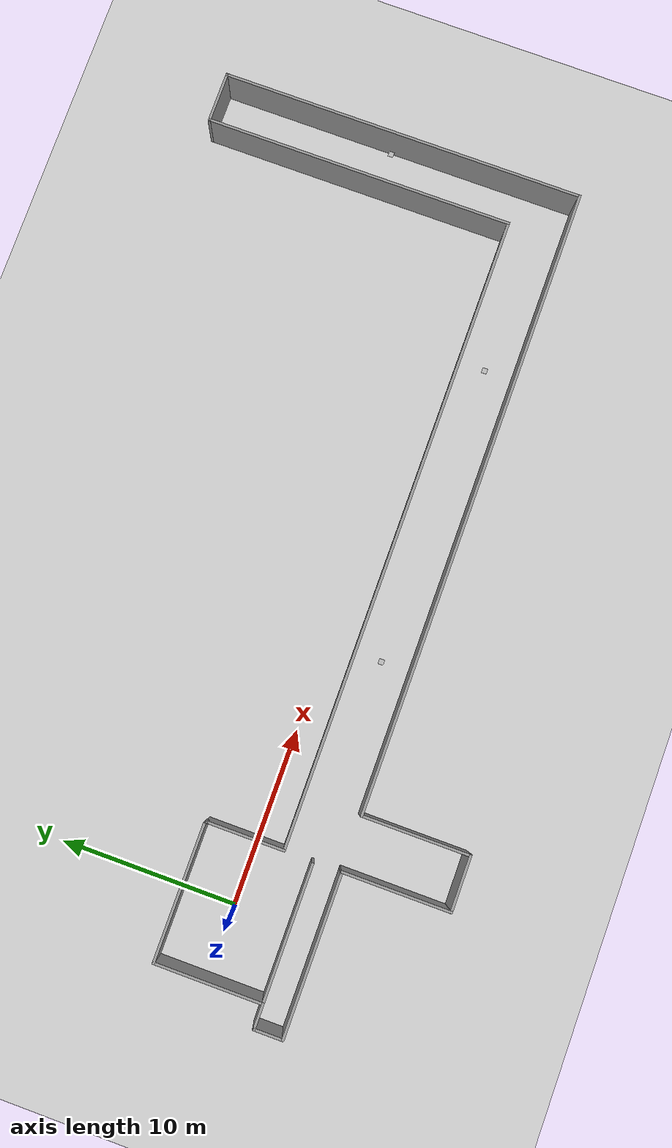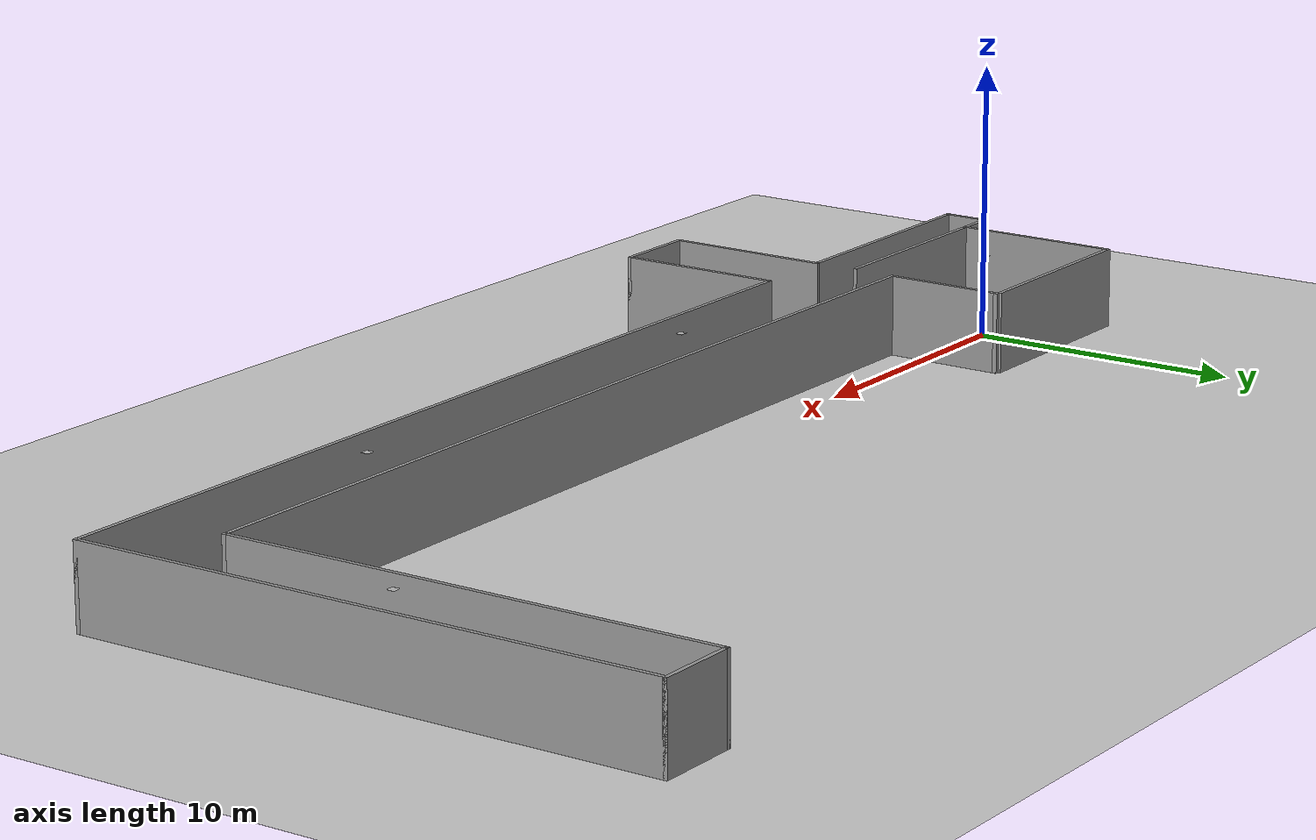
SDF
<?xml version='1.0'?>
<sdf version='1.6'>
 <world name="default">
	<include>
      <uri>model://ground_plane</uri>
    </include>
	<include>
      <uri>model://sun</uri>
    </include>
  <model name='dipartimento'>
    <pose frame=''>19.064873 2.743365 0 0 -0 1.5708</pose>
    <link name='Wall_0'>
      <collision name='Wall_0_Collision'>
        <geometry>
          <box>
            <size>1.75 0.15 3.25</size>
          </box>
        </geometry>
        <pose frame=''>0 0 1.25 0 -0 0</pose>
      </collision>
      <visual name='Wall_0_Visual'>
        <pose frame=''>0 0 1.25 0 -0 0</pose>
        <geometry>
          <box>
            <size>1.75 0.15 3.25</size>
          </box>
        </geometry>
        <material>
          <script>
            <uri>file://media/materials/scripts/gazebo.material</uri>
            <name>Gazebo/Grey</name>
          </script>
          <ambient>1 1 1 1</ambient>
        </material>
        <meta>
          <layer>0</layer>
        </meta>
      </visual>
      <pose frame=''>-6.7 24.275 0 0 -0 0</pose>
    </link>
    <link name='Wall_1'>
      <collision name='Wall_1_Collision'>
        <geometry>
          <box>
            <size>1.5 0.15 3.25</size>
          </box>
        </geometry>
        <pose frame=''>0 0 1.25 0 -0 0</pose>
      </collision>
      <visual name='Wall_1_Visual'>
        <pose frame=''>0 0 1.25 0 -0 0</pose>
        <geometry>
          <box>
            <size>1.5 0.15 3.25</size>
          </box>
        </geometry>
        <material>
          <script>
            <uri>file://media/materials/scripts/gazebo.material</uri>
            <name>Gazebo/Grey</name>
          </script>
          <ambient>1 1 1 1</ambient>
        </material>
        <meta>
          <layer>0</layer>
        </meta>
      </visual>
      <pose frame=''>-5.9 23.6 0 0 0 -1.5708</pose>
    </link>
    <link name='Wall_10'>
      <collision name='Wall_10_Collision'>
        <geometry>
          <box>
            <size>3.25 0.15 3.25</size>
          </box>
        </geometry>
        <pose frame=''>0 0 1.25 0 -0 0</pose>
      </collision>
      <visual name='Wall_10_Visual'>
        <pose frame=''>0 0 1.25 0 -0 0</pose>
        <geometry>
          <box>
            <size>3.25 0.15 3.25</size>
          </box>
        </geometry>
        <material>
          <script>
            <uri>file://media/materials/scripts/gazebo.material</uri>
            <name>Gazebo/Grey</name>
          </script>
          <ambient>1 1 1 1</ambient>
        </material>
        <meta>
          <layer>0</layer>
        </meta>
      </visual>
      <pose frame=''>-13.6 13.625 0 0 0 -1.5708</pose>
    </link>
    <link name='Wall_11'>
      <collision name='Wall_11_Collision'>
        <geometry>
          <box>
            <size>6.25 0.15 3.25</size>
          </box>
        </geometry>
        <pose frame=''>0 0 1.25 0 -0 0</pose>
      </collision>
      <visual name='Wall_11_Visual'>
        <pose frame=''>0 0 1.25 0 -0 0</pose>
        <geometry>
          <box>
            <size>6.25 0.15 3.25</size>
          </box>
        </geometry>
        <material>
          <script>
            <uri>file://media/materials/scripts/gazebo.material</uri>
            <name>Gazebo/Grey</name>
          </script>
          <ambient>1 1 1 1</ambient>
        </material>
        <meta>
          <layer>0</layer>
        </meta>
      </visual>
      <pose frame=''>-10.55 12.075 0 0 -0 0</pose>
    </link>
    <link name='Wall_13'>
      <collision name='Wall_13_Collision'>
        <geometry>
          <box>
            <size>36.5 0.15 3.25</size>
          </box>
        </geometry>
        <pose frame=''>0 0 1.25 0 -0 0</pose>
      </collision>
      <visual name='Wall_13_Visual'>
        <pose frame=''>0 0 1.25 0 -0 0</pose>
        <geometry>
          <box>
            <size>36.5 0.15 3.25</size>
          </box>
        </geometry>
        <material>
          <script>
            <uri>file://media/materials/scripts/gazebo.material</uri>
            <name>Gazebo/Grey</name>
          </script>
          <ambient>1 1 1 1</ambient>
        </material>
        <meta>
          <layer>0</layer>
        </meta>
      </visual>
      <pose frame=''>-7.5 -6.1 0 0 0 -1.5708</pose>
    </link>
    <link name='Wall_15'>
      <collision name='Wall_15_Collision'>
        <geometry>
          <box>
            <size>21.25 0.15 3.25</size>
          </box>
        </geometry>
        <pose frame=''>0 0 1.25 0 -0 0</pose>
      </collision>
      <visual name='Wall_15_Visual'>
        <pose frame=''>0 0 1.25 0 -0 0</pose>
        <geometry>
          <box>
            <size>21.25 0.15 3.25</size>
          </box>
        </geometry>
        <material>
          <script>
            <uri>file://media/materials/scripts/gazebo.material</uri>
            <name>Gazebo/Grey</name>
          </script>
          <ambient>1 1 1 1</ambient>
        </material>
        <meta>
          <layer>0</layer>
        </meta>
      </visual>
      <pose frame=''>3.05 -24.275 0 0 -0 0</pose>
    </link>
    <link name='Wall_16'>
      <collision name='Wall_16_Collision'>
        <geometry>
          <box>
            <size>3 0.15 3.25</size>
          </box>
        </geometry>
        <pose frame=''>0 0 1.25 0 -0 0</pose>
      </collision>
      <visual name='Wall_16_Visual'>
        <pose frame=''>0 0 1.25 0 -0 0</pose>
        <geometry>
          <box>
            <size>3 0.15 3.25</size>
          </box>
        </geometry>
        <material>
          <script>
            <uri>file://media/materials/scripts/gazebo.material</uri>
            <name>Gazebo/Grey</name>
          </script>
          <ambient>1 1 1 1</ambient>
        </material>
        <meta>
          <layer>0</layer>
        </meta>
      </visual>
      <pose frame=''>13.6 -22.85 0 0 -0 1.5708</pose>
    </link>
    <link name='Wall_17'>
      <collision name='Wall_17_Collision'>
        <geometry>
          <box>
            <size>18 0.15 3.25</size>
          </box>
        </geometry>
        <pose frame=''>0 0 1.25 0 -0 0</pose>
      </collision>
      <visual name='Wall_17_Visual'>
        <pose frame=''>0 0 1.25 0 -0 0</pose>
        <geometry>
          <box>
            <size>18 0.15 3.25</size>
          </box>
        </geometry>
        <material>
          <script>
            <uri>file://media/materials/scripts/gazebo.material</uri>
            <name>Gazebo/Grey</name>
          </script>
          <ambient>1 1 1 1</ambient>
        </material>
        <meta>
          <layer>0</layer>
        </meta>
      </visual>
      <pose frame=''>4.675 -21.425 0 0 -0 3.14159</pose>
    </link>
    <link name='Wall_18'>
      <collision name='Wall_18_Collision'>
        <geometry>
          <box>
            <size>36.75 0.15 3.25</size>
          </box>
        </geometry>
        <pose frame=''>0 0 1.25 0 -0 0</pose>
      </collision>
      <visual name='Wall_18_Visual'>
        <pose frame=''>0 0 1.25 0 -0 0</pose>
        <geometry>
          <box>
            <size>36.75 0.15 3.25</size>
          </box>
        </geometry>
        <material>
          <script>
            <uri>file://media/materials/scripts/gazebo.material</uri>
            <name>Gazebo/Grey</name>
          </script>
          <ambient>1 1 1 1</ambient>
        </material>
        <meta>
          <layer>0</layer>
        </meta>
      </visual>
      <pose frame=''>-4.25 -3.125 0 0 -0 1.5708</pose>
    </link>
    <link name='Wall_2'>
      <collision name='Wall_2_Collision'>
        <geometry>
          <box>
            <size>6.25 0.15 3.25</size>
          </box>
        </geometry>
        <pose frame=''>0 0 1.25 0 -0 0</pose>
      </collision>
      <visual name='Wall_2_Visual'>
        <pose frame=''>0 0 1.25 0 -0 0</pose>
        <geometry>
          <box>
            <size>6.25 0.15 3.25</size>
          </box>
        </geometry>
        <material>
          <script>
            <uri>file://media/materials/scripts/gazebo.material</uri>
            <name>Gazebo/Grey</name>
          </script>
          <ambient>1 1 1 1</ambient>
        </material>
        <meta>
          <layer>0</layer>
        </meta>
      </visual>
      <pose frame=''>-2.85 22.925 0 0 -0 0</pose>
    </link>
    <link name='Wall_20'>
      <collision name='Wall_20_Collision'>
        <geometry>
          <box>
            <size>4.5 0.15 3.25</size>
          </box>
        </geometry>
        <pose frame=''>0 0 1.25 0 -0 0</pose>
      </collision>
      <visual name='Wall_20_Visual'>
        <pose frame=''>0 0 1.25 0 -0 0</pose>
        <geometry>
          <box>
            <size>4.5 0.15 3.25</size>
          </box>
        </geometry>
        <material>
          <script>
            <uri>file://media/materials/scripts/gazebo.material</uri>
            <name>Gazebo/Grey</name>
          </script>
          <ambient>1 1 1 1</ambient>
        </material>
        <meta>
          <layer>0</layer>
        </meta>
      </visual>
      <pose frame=''>-2.075 15.175 0 0 -0 0</pose>
    </link>
    <link name='Wall_21'>
      <collision name='Wall_21_Collision'>
        <geometry>
          <box>
            <size>0.16 0.15 3.25</size>
          </box>
        </geometry>
        <pose frame=''>0 0 1.25 0 -0 0</pose>
      </collision>
      <visual name='Wall_21_Visual'>
        <pose frame=''>0 0 1.25 0 -0 0</pose>
        <geometry>
          <box>
            <size>0.16 0.15 3.25</size>
          </box>
        </geometry>
        <material>
          <script>
            <uri>file://media/materials/scripts/gazebo.material</uri>
            <name>Gazebo/Grey</name>
          </script>
          <ambient>1 1 1 1</ambient>
        </material>
        <meta>
          <layer>0</layer>
        </meta>
      </visual>
      <pose frame=''>0.105 15.175 0 0 -0 0</pose>
    </link>
    <link name='Wall_23'>
      <collision name='Wall_23_Collision'>
        <geometry>
          <box>
            <size>7.75 0.15 3.25</size>
          </box>
        </geometry>
        <pose frame=''>0 0 1.25 0 -0 0</pose>
      </collision>
      <visual name='Wall_23_Visual'>
        <pose frame=''>0 0 1.25 0 -0 0</pose>
        <geometry>
          <box>
            <size>7.75 0.15 3.25</size>
          </box>
        </geometry>
        <material>
          <script>
            <uri>file://media/materials/scripts/gazebo.material</uri>
            <name>Gazebo/Grey</name>
          </script>
          <ambient>1 1 1 1</ambient>
        </material>
        <meta>
          <layer>0</layer>
        </meta>
      </visual>
      <pose frame=''>-5.9 19.125 0 0 0 -1.5708</pose>
    </link>
    <link name='Wall_25'>
      <collision name='Wall_25_Collision'>
        <geometry>
          <box>
            <size>7.75 0.15 3.25</size>
          </box>
        </geometry>
        <pose frame=''>0 0 1.25 0 -0 0</pose>
      </collision>
      <visual name='Wall_25_Visual'>
        <pose frame=''>0 0 1.25 0 -0 0</pose>
        <geometry>
          <box>
            <size>7.75 0.15 3.25</size>
          </box>
        </geometry>
        <material>
          <script>
            <uri>file://media/materials/scripts/gazebo.material</uri>
            <name>Gazebo/Grey</name>
          </script>
          <ambient>1 1 1 1</ambient>
        </material>
        <meta>
          <layer>0</layer>
        </meta>
      </visual>
      <pose frame=''>0.2 19.125 0 0 0 -1.5708</pose>
    </link>
    <link name='Wall_5'>
      <collision name='Wall_5_Collision'>
        <geometry>
          <box>
            <size>9.25 0.15 3.25</size>
          </box>
        </geometry>
        <pose frame=''>0 0 1.25 0 -0 0</pose>
      </collision>
      <visual name='Wall_5_Visual'>
        <pose frame=''>0 0 1.25 0 -0 0</pose>
        <geometry>
          <box>
            <size>9.25 0.15 3.25</size>
          </box>
        </geometry>
        <material>
          <script>
            <uri>file://media/materials/scripts/gazebo.material</uri>
            <name>Gazebo/Grey</name>
          </script>
          <ambient>1 1 1 1</ambient>
        </material>
        <meta>
          <layer>0</layer>
        </meta>
      </visual>
      <pose frame=''>-7.5 19.725 0 0 0 -1.5708</pose>
    </link>
    <link name='Wall_8'>
      <collision name='Wall_8_Collision'>
        <geometry>
          <box>
            <size>6.25 0.15 3.25</size>
          </box>
        </geometry>
        <pose frame=''>0 0 1.25 0 -0 0</pose>
      </collision>
      <visual name='Wall_8_Visual'>
        <pose frame=''>0 0 1.25 0 -0 0</pose>
        <geometry>
          <box>
            <size>6.25 0.15 3.25</size>
          </box>
        </geometry>
        <material>
          <script>
            <uri>file://media/materials/scripts/gazebo.material</uri>
            <name>Gazebo/Grey</name>
          </script>
          <ambient>1 1 1 1</ambient>
        </material>
        <meta>
          <layer>0</layer>
        </meta>
      </visual>
      <pose frame=''>-10.55 15.175 0 0 -0 3.14159</pose>
    </link>

	<include>
      <uri>model://qr_code_dipartimento</uri>
      <pose>0 0 3 0 0 0</pose>
    </include>
    <static>1</static>
  </model>
 </world>
</sdf>

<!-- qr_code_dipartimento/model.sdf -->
<sdf version="1.4">
  <model name="qr_code">

   <link name="qr_code_0">
      <pose>-2.743365 19.064873 0 0 0 -1.5708</pose>
      <collision name="collision">
        <geometry>
            <box>
            <size>0.2968625 0.2968625 0.001</size>
          </box>
        </geometry>
      </collision>
      <visual name="visual">
        <geometry>
          <box>
            <size>0.2968625 0.2968625 0.001</size>
          </box>
        </geometry>
        <material>
		  <script>
            <uri>model://qr_code_dipartimento/materials/scripts/qr_code_0.material</uri>
            <uri>model://qr_code_dipartimento/materials/textures/qr_code_0.png</uri>
            <name>qr_code_0/Image</name>
          </script>
        </material>
      </visual>
    </link>

    <link name="qr_code 1">
      <pose>-5.743365 4.064873 0 0 0 -1.5708</pose>
      <collision name="collision">
        <geometry>
            <box>
            <size>0.2968625 0.2968625 0.001</size>
          </box>
        </geometry>
      </collision>
      <visual name="visual">
        <geometry>
          <box>
            <size>0.2968625 0.2968625 0.001</size>
          </box>
        </geometry>
        <material>
		  <script>
            <uri>model://qr_code_dipartimento/materials/scripts/qr_code_1.material</uri>
            <uri>model://qr_code_dipartimento/materials/textures/qr_code_1.png</uri>
            <name>qr_code_1/Image</name>
          </script>
        </material>
      </visual>
    </link>

    <link name="qr_code 2">
      <pose>-5.743365 -12.934 0 0 0 -1.5708</pose>
      <collision name="collision">
        <geometry>
            <box>
            <size>0.2968625 0.2968625 0.001</size>
          </box>
        </geometry>
      </collision>
      <visual name="visual">
        <geometry>
          <box>
            <size>0.2968625 0.2968625 0.001</size>
          </box>
        </geometry>
        <material>
		  <script>
            <uri>model://qr_code_dipartimento/materials/scripts/qr_code_2.material</uri>
            <uri>model://qr_code_dipartimento/materials/textures/qr_code_2.png</uri>
            <name>qr_code_2/Image</name>
          </script>
        </material>
      </visual>
    </link>

    <link name="qr_code_3">
      <pose>3.257 -22.934 0 0 0 -1.5708</pose>
      <collision name="collision">
        <geometry>
            <box>
            <size>0.2968625 0.2968625 0.001</size>
          </box>
        </geometry>
      </collision>
      <visual name="visual">
        <geometry>
          <box>
            <size>0.2968625 0.2968625 0.001</size>
          </box>
        </geometry>
        <material>
		  <script>
            <uri>model://qr_code_dipartimento/materials/scripts/qr_code_3.material</uri>
            <uri>model://qr_code_dipartimento/materials/textures/qr_code_3.png</uri>
            <name>qr_code_3/Image</name>
          </script>
        </material>
      </visual>
    </link>

  </model>
</sdf>
